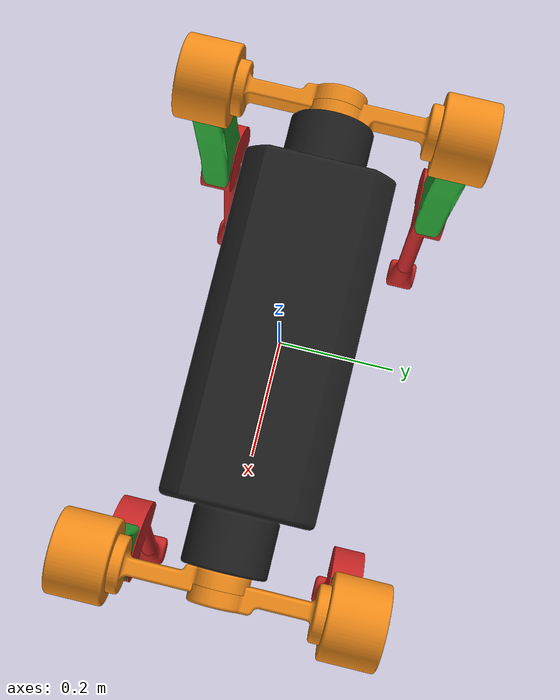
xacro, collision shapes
<?xml version="1.0"?>
<robot xmlns:xacro="http://www.ros.org/wiki/xacro" name="argos">

    <xacro:property name="pi" value="3.14159265358979" />
    <xacro:include filename="$(find mini_project)/robots/robot_properties.urdf.xacro"/>

    <link name="base_link">
        <visual>
            <geometry>
                <mesh filename="${path_to_base}" scale = "0.001 0.001 0.001"/>
            </geometry>
            <origin xyz="0.0 0.0 0.0" rpy="${pi/2} 0 0"/>
        </visual>
        <collision>
            <geometry>
                <mesh filename="${path_to_base}" scale = "0.001 0.001 0.001"/>
            </geometry>
            <origin xyz="0.0 0.0 0.0" rpy="${pi/2} 0 0"/>
        </collision>
    </link>

    <link name="base_inertia">
        <inertial>
            <origin xyz="${body_center_of_mass}"/>
            <mass value="${body_mass}" />
            <inertia ixx="${ixx_body}" ixy="${ixy_body}" ixz="${ixz_body}"
                     iyy="${iyy_body}" iyz="${iyz_body}"
                     izz="${izz_body}" />
        </inertial>
    </link>
    <joint name="base_link_to_base_inertia" type="fixed">
        <parent link="base_link"/>
        <child link="base_inertia"/>
        <origin rpy="0 0 0" xyz="0 0 0"/>
    </joint>

    <xacro:include filename="$(find mini_project)/robots/legs.urdf.xacro"/>

    <xacro:include filename="$(find mini_project)/robots/accessories.urdf.xacro"/>

    <xacro:accessories base_name = "base_link"/>

    <gazebo reference="base_link">
        <material>Gazebo/FlatBlack</material>
    </gazebo>

    <xacro:argos_leg leg="LF"/>
    <xacro:argos_leg leg="RF"/>
    <xacro:argos_leg leg="LH"/>
    <xacro:argos_leg leg="RH"/>

    <xacro:include filename="$(find mini_project)/robots/manipulator.urdf.xacro"/>

    <gazebo>
      <plugin name="p3d_base_controller" filename="libgazebo_ros_p3d.so">
            <alwaysOn>true</alwaysOn>
            <updateRate>50.0</updateRate>
            <bodyName>base_link</bodyName>
            <topicName>odom/ground_truth</topicName>
            <gaussianNoise>0.001</gaussianNoise>
            <frameName>world</frameName>
            <xyzOffsets>0 0 0</xyzOffsets>
            <rpyOffsets>0 0 0</rpyOffsets>
        </plugin>
    </gazebo>

    <gazebo>
      <plugin filename="libgazebo_ros_control.so" name="gazebo_ros_control">
        <legacyModeNS>true</legacyModeNS>
      </plugin>
   </gazebo>

</robot>

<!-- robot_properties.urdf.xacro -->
<robot xmlns:xacro="http://www.ros.org/wiki/xacro">
    <xacro:property name="path_to_base"                     value = "package://mini_project/meshes/body.dae"/>
    <xacro:property name="path_to_leg_roll"                 value = "package://mini_project/meshes/thigh.dae"/>
    <xacro:property name="path_to_upper_leg"                value = "package://mini_project/meshes/upper_leg.dae"/>
    <xacro:property name="path_to_lower_leg"                value = "package://mini_project/meshes/lower_leg.dae"/>
    <xacro:property name="path_to_manipulator_base"         value = "package://mini_project/meshes/manipulator_joint.dae"/>
    <xacro:property name="path_to_manipulator_segment_1"    value = "package://mini_project/meshes/manipulator_segment_1.dae"/>
    <xacro:property name="path_to_manipulator_segment_2"    value = "package://mini_project/meshes/manipulator_segment_2.dae"/>

    <xacro:property name="ixx_body"                         value = "0.23665589"/>
    <xacro:property name="ixy_body"                         value = "0.0"/>
    <xacro:property name="ixz_body"                         value = "0.0"/>
    <xacro:property name="iyy_body"                         value = "0.96482316"/>
    <xacro:property name="iyz_body"                         value = "0.0"/>
    <xacro:property name="izz_body"                         value = "0.94492313"/>
    <xacro:property name="body_mass"                        value = "22.44280461"/>
    <xacro:property name="body_center_of_mass"              value = "0 0 -0.00722624877"/>

    <xacro:property name="ixx_leg_roll"                     value = "0.00885796"/>
    <xacro:property name="ixy_leg_roll"                     value = "-0.00035945"/>
    <xacro:property name="ixz_leg_roll"                     value = "0.0"/>
    <xacro:property name="iyy_leg_roll"                     value = "0.00270149"/>
    <xacro:property name="iyz_leg_roll"                     value = "0.0"/>
    <xacro:property name="izz_leg_roll"                     value = "0.00880666"/>
    <xacro:property name="leg_roll_mass"                    value = "1.16920190"/>
    <xacro:property name="leg_roll_center_x"                value = "0.00160346990"/>
    <xacro:property name="leg_roll_center_y"                value = "0.19560047521"/>
    <xacro:property name="leg_roll_center_z"                value = "0.0"/>

    <xacro:property name="ixx_thigh"                        value = "0.03528932"/>
    <xacro:property name="ixy_thigh"                        value = "0.0"/>
    <xacro:property name="ixz_thigh"                        value = "0.0"/>0
    <xacro:property name="iyy_thigh"                        value = "0.03607343"/>
    <xacro:property name="iyz_thigh"                        value = "0.0"/>
    <xacro:property name="izz_thigh"                        value = "0.00156646"/>
    <xacro:property name="thigh_mass"                       value = "1.45302356"/>
    <xacro:property name="thigh_center_x"                   value = "-0.00000012465"/>
    <xacro:property name="thigh_center_y"                   value = "0.00000008927"/>
    <xacro:property name="thigh_center_z"                   value = "-0.19777343169"/>
    <xacro:property name="thigh_center_of_mass"             value = "${thigh_center_x} ${thigh_center_y} ${thigh_center_z}"/>

    <xacro:property name="ixx_lower_leg"                    value = "0.04402853"/>
    <xacro:property name="ixy_lower_leg"                    value = "0.0"/>
    <xacro:property name="ixz_lower_leg"                    value = "0.00627914"/>
    <xacro:property name="iyy_lower_leg"                    value = "0.04611436"/>
    <xacro:property name="iyz_lower_leg"                    value = "0.0"/>
    <xacro:property name="izz_lower_leg"                    value = "0.00267640"/>
    <xacro:property name="lower_leg_mass"                   value = "0.87000291"/>
    <xacro:property name="lower_leg_center_x"               value = "-0.05466888228"/>
    <xacro:property name="lower_leg_center_y"               value = "0.00000002713"/>
    <xacro:property name="lower_leg_center_z"               value = "-0.15386388146"/>
    <xacro:property name="lower_leg_center_of_mass"         value = "${lower_leg_center_x} ${lower_leg_center_y} ${lower_leg_center_z}"/>

    <xacro:property name="ixx_man_base"                     value = "0.00296184"/>
    <xacro:property name="ixy_man_base"                     value = "-0.00000001"/>
    <xacro:property name="ixz_man_base"                     value = "0.0"/>
    <xacro:property name="iyy_man_base"                     value = "0.00227611"/>
    <xacro:property name="iyz_man_base"                     value = "-0.00023033"/>
    <xacro:property name="izz_man_base"                     value = "0.00315083"/>
    <xacro:property name="man_base_mass"                    value = "0.81645579"/>
    <xacro:property name="man_base_center"                  value = "0.0001195 -0.01132600777 0.04996291284 "/>

    <xacro:property name="ixx_man_seg_1"                    value = "0.00014575"/>
    <xacro:property name="ixy_man_seg_1"                    value = "0.00000006"/>
    <xacro:property name="ixz_man_seg_1"                    value = "0.0"/>
    <xacro:property name="iyy_man_seg_1"                    value = "0.00372678"/>
    <xacro:property name="iyz_man_seg_1"                    value = "0.0"/>
    <xacro:property name="izz_man_seg_1"                    value = "0.00365311"/>
    <xacro:property name="man_seg_1_mass"                   value = "0.32860657"/>
    <xacro:property name="man_seg_1_center"                 value = "-0.12499144985 0.00000184653 0.0"/>

    <xacro:property name="ixx_man_seg_2"                    value = "0.00007802"/>
    <xacro:property name="ixy_man_seg_2"                    value = "0.0"/>
    <xacro:property name="ixz_man_seg_2"                    value = "0.0"/>
    <xacro:property name="iyy_man_seg_2"                    value = "0.00960176"/>
    <xacro:property name="iyz_man_seg_2"                    value = "0.0"/>
    <xacro:property name="izz_man_seg_2"                    value = "0.00962804"/>
    <xacro:property name="man_seg_2_mass"                   value = "0.19651902"/>
    <xacro:property name="man_seg_2_center"                 value = "0.19438946797 0.0 0.00000001267"/>

</robot>

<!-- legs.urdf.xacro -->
<robot xmlns:xacro="http://www.ros.org/wiki/xacro">
    <xacro:macro name="argos_leg" params="leg ">

        <xacro:if value="${leg == 'RF'}">
            <xacro:property name="side" value = "-1"/>
            <xacro:property name="position_hip" value = "0.43"/>
        </xacro:if>

        <xacro:if value="${leg == 'LF'}">
            <xacro:property name="side" value = "1"/>
            <xacro:property name="position_hip" value = "0.43"/>
        </xacro:if>

        <xacro:if value="${leg == 'RH'}">
            <xacro:property name="side" value = "-1"/>
            <xacro:property name="position_hip" value = "-0.43"/>
        </xacro:if>

        <xacro:if value="${leg == 'LH'}">
            <xacro:property name="side" value = "1"/>
            <xacro:property name="position_hip" value = "-0.43"/>
        </xacro:if>

        <xacro:property name="leg_roll_center_of_mass" value = "${side*leg_roll_center_x} ${side*leg_roll_center_y} ${leg_roll_center_z}"/>
        <xacro:property name="toeOffset" value="0.0106"/>
        <xacro:property name="toeStiffness" value="30000.0"/>
        <xacro:property name="toeDamping" value="1000.0"/>
        <xacro:property name="toeFriction" value="1.0"/>
        <xacro:property name="toeLateralFriction" value="1.0"/>

        <link name="${leg}_leg_roll">
            <inertial>
                <origin xyz = "${leg_roll_center_of_mass}"  rpy="0 0 0"/>
                <mass value="${leg_roll_mass}" />
                <inertia ixx="${ixx_leg_roll}" ixy="${ixy_leg_roll}" ixz="${ixz_leg_roll}"
                     iyy="${iyy_leg_roll}" iyz="${iyz_leg_roll}"
                     izz="${izz_leg_roll}" />
            </inertial>
            <visual>
                <geometry>
                    <mesh filename="${path_to_leg_roll}" scale = "0.001 0.001 0.001"/>
                </geometry>
                <origin xyz="0.0 0.0 0.0" rpy="${pi/2} 0.0 ${pi*side/2}" />
            </visual>
            <collision>
                <geometry>
                    <mesh filename="${path_to_leg_roll}" scale = "0.001 0.001 0.001"/>
                </geometry>
                <origin xyz="0.0 0.0 0.0" rpy="${pi/2} 0.0 ${pi*side/2}"/>
            </collision>
        </link>

        <gazebo reference="${leg}_leg_roll">
            <material>Gazebo/Orange</material>
        </gazebo>

        <link name="${leg}_upper_leg">
            <inertial>
                <origin xyz = "${thigh_center_of_mass}"  rpy="0 0 0"/>
                <mass value="${thigh_mass}" />
                <inertia ixx="${ixx_thigh}" ixy="${side*ixy_thigh}" ixz="${ixz_thigh}"
                     iyy="${iyy_thigh}" iyz="${side*iyz_thigh}"
                     izz="${izz_thigh}" />
            </inertial>
            <visual>
                <geometry>
                    <mesh filename="${path_to_upper_leg}" scale = "0.001 0.001 0.001"/>
                </geometry>
                <origin xyz="0.0 0.0 0.0" rpy="${pi/2} ${-pi/2} 0"/>
            </visual>
            <collision>
                <geometry>
                    <mesh filename="${path_to_upper_leg}" scale = "0.001 0.001 0.001"/>
                </geometry>
                <origin xyz="0.0 0.0 0.0" rpy="${pi/2} ${-pi/2} 0"/>
            </collision>
        </link>

        <gazebo reference="${leg}_upper_leg">
            <material>Gazebo/Green</material>
        </gazebo>

        <link name="${leg}_lower_leg">
            <inertial>
                <origin xyz = "${lower_leg_center_of_mass}" rpy="0 -0.2 0"/>
                <mass value="${lower_leg_mass}" />
                <inertia ixx="${ixx_lower_leg}" ixy="${ixy_lower_leg}" ixz="${ixz_lower_leg}"
                     iyy="${iyy_lower_leg}" iyz="${iyz_lower_leg}"
                     izz="${izz_lower_leg}" />
            </inertial>
            <visual>
                <geometry>
                    <mesh filename="${path_to_lower_leg}" scale = "0.001 0.001 0.001"/>
                </geometry>
                <origin xyz="0 0.0 0" rpy="${pi/2} ${pi/2-0.2} 0"/>
            </visual>
            <collision>
                <geometry>
                    <mesh filename="${path_to_lower_leg}" scale = "0.001 0.001 0.001"/>
                </geometry>
                <origin xyz="0 0.0 0" rpy="${pi/2} ${pi/2-0.2} 0"/>
            </collision>
        </link>

        <gazebo reference="${leg}_lower_leg">
			<kp>100000.0</kp>
            <kd>1.0</kd>
            <mu1>1.0</mu1>
            <mu2>1.0</mu2>
            <maxVel>0.0</maxVel>
            <minDepth>0.001</minDepth>
            <material>Gazebo/Red</material>
        </gazebo>

        <link name="${leg}_foot"/>

        <joint name="${leg}_hip_joint" type="revolute">
            <parent link="base_link"/>
            <child link="${leg}_leg_roll"/>
            <axis xyz="1.0 0.0 0.0"/>
            <origin xyz="${position_hip} 0.0 0.0"/>
            <limit effort="100" lower="-${pi}" upper="${pi}" velocity="10.0" />
        </joint>

        <joint name="${leg}_upper_leg_joint" type="revolute">
            <parent link="${leg}_leg_roll"/>
            <child link="${leg}_upper_leg"/>
            <axis xyz="0.0 1.0  0.0"/>
            <origin xyz="0.0 ${side*0.233} 0.0"/>

            <limit effort="100" lower="-${pi}" upper="${pi}" velocity="10.0" />
        </joint>

        <joint name="${leg}_lower_leg_joint" type="revolute">
            <parent link="${leg}_upper_leg"/>
            <child link="${leg}_lower_leg"/>
            <axis xyz="0.0 1.0  0.0"/>
            <origin xyz="0.0 0.0 -0.45"/>
            <limit effort="100" lower="-${pi}" upper="${pi}" velocity="10.0" />
        </joint>

        <joint name="${leg}_foot_joint" type="fixed">
            <parent link="${leg}_lower_leg"/>
            <child link="${leg}_foot"/>
            <origin xyz="0.0 0.0 -0.61"/>
        </joint>

        <gazebo reference="${leg}_hip_joint">
            <provideFeedback>true</provideFeedback>
        </gazebo>

        <gazebo reference="${leg}_upper_leg_joint">
            <provideFeedback>true</provideFeedback>
        </gazebo>

        <gazebo reference="${leg}_lower_leg_joint">
            <provideFeedback>true</provideFeedback>
        </gazebo>

        <transmission name="${leg}_hip_joint_trans">
            <type>transmission_interface/SimpleTransmission</type>
            <joint name="${leg}_hip_joint">
            <hardwareInterface>hardware_interface/EffortJointInterface</hardwareInterface>
            </joint>
            <actuator name="${leg}_hip_joint_motor">
                <mechanicalReduction>1</mechanicalReduction>
            </actuator>
        </transmission>

        <transmission name="${leg}_upper_leg_joint_trans">
            <type>transmission_interface/SimpleTransmission</type>
            <joint name="${leg}_upper_leg_joint">
            <hardwareInterface>hardware_interface/EffortJointInterface</hardwareInterface>
            </joint>
            <actuator name="${leg}_upper_leg_joint_motor">
                <mechanicalReduction>1</mechanicalReduction>
            </actuator>
        </transmission>

        <transmission name="${leg}_lower_leg_joint_trans">
            <type>transmission_interface/SimpleTransmission</type>
            <joint name="${leg}_lower_leg_joint">
            <hardwareInterface>hardware_interface/EffortJointInterface</hardwareInterface>
            </joint>
            <actuator name="${leg}_lower_joint_motor">
                <mechanicalReduction>1</mechanicalReduction>
            </actuator>
        </transmission>

    </xacro:macro>
</robot>

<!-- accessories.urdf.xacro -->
<robot xmlns:xacro="http://ros.org/wiki/xacro">
    <xacro:macro name="accessories" params="base_name " >

        <xacro:include filename="$(find mini_project)/robots/materials.urdf.xacro" />

    <!-- Arguments -->

    <xacro:arg name="camera_name"   default="zed2" />
    <xacro:arg name="camera_model"  default="zed2" />
    <xacro:arg name="base_frame"    default="${base_name}" />
    <xacro:arg name="cam_pos_x"     default="0.31" />
    <xacro:arg name="cam_pos_y"     default="0.0" />
    <xacro:arg name="cam_pos_z"     default="-0.12" />
    <xacro:arg name="cam_roll"      default="0.0" />
    <xacro:arg name="cam_pitch"     default="0.0" />
    <xacro:arg name="cam_yaw"       default="0.0" />

    <!-- Properties -->
    <xacro:property name="M_PI"     value="3.1415926535897931" />
    <xacro:property name="model"    value="$(arg camera_model)" />

    <xacro:if value="${model == 'zed'}">
        <xacro:property name="baseline" value="0.12" />
    </xacro:if>
    <xacro:if value="${model == 'zedm'}">
        <xacro:property name="baseline" value="0.06" />
    </xacro:if>
    <xacro:if value="${model == 'zed2'}">
        <xacro:property name="baseline" value="0.12" />
    </xacro:if>
    <xacro:if value="${model == 'zed2i'}">
        <xacro:property name="baseline" value="0.12" />
    </xacro:if>

<!-- Camera Center -->
    <joint name="camera_center_joint" type="fixed">
        <parent link="$(arg base_frame)"/>
        <child link="camera_center"/>
        <origin xyz="$(arg cam_pos_x) $(arg cam_pos_y) $(arg cam_pos_z)" rpy="$(arg cam_roll) $(arg cam_pitch) $(arg cam_yaw)" />
    </joint>

    <link name="camera_center">
        <visual>
            <origin xyz="0 0 0" rpy="0 0 0"/>
            <geometry>
                <mesh filename="package://mini_project/meshes/${model}.stl" />
            </geometry>
            <material name="${model}_mat" />
        </visual>
    </link>

<!-- Left Camera -->
    <joint name="left_camera_joint" type="fixed">
        <parent link="camera_center"/>
        <child link="left_camera_frame"/>
        <origin xyz="0 ${baseline/2} 0" rpy="0 0 0" />
    </joint>

    <link name="left_camera_frame" />

    <joint name="left_camera_optical_joint" type="fixed">
        <origin xyz="0 0 0" rpy="-${M_PI/2} 0.0 -${M_PI/2}"/>
        <parent link="left_camera_frame"/>
        <child link="left_camera_optical_frame"/>
    </joint>

    <link name="left_camera_optical_frame"/>

        <gazebo reference="camera_center">
            <sensor type="multicamera" name="stereo_camera">
            <update_rate>50.0</update_rate>
            <camera name="left">
                <pose>0 0.06 0 0 0 0</pose>
                <horizontal_fov>1.91986218</horizontal_fov>
                <vertical_fov>1.22173048</vertical_fov>
                <diagonal_fov>2.0943951</diagonal_fov>
                <image>
                <width>1280</width>
                <height>720</height>
                <format>R8G8B8</format>
                </image>
                <clip>
                <near>0.02</near>
                <far>300</far>
                </clip>
                <noise>
                <type>gaussian</type>
                <mean>0.0</mean>
                <stddev>0.004</stddev>
                </noise>
            </camera>
            <camera name="right">
                <pose>0 -0.06 0 0 0 0</pose>
                <horizontal_fov>1.91986218</horizontal_fov>
                <vertical_fov>1.22173048</vertical_fov>
                <diagonal_fov>2.0943951</diagonal_fov>
                <image>
                <width>1280</width>
                <height>720</height>
                <format>R8G8B8</format>
                </image>
                <clip>
                <near>0.02</near>
                <far>300</far>
                </clip>
                <noise>
                <type>gaussian</type>
                <mean>0.0</mean>
                <stddev>0.004</stddev>
                </noise>
            </camera>
            <plugin name="stereo_camera_controller" filename="libgazebo_ros_multicamera.so">
                <alwaysOn>true</alwaysOn>
                <updateRate>0.0</updateRate>
                <cameraName>camera</cameraName>
                <imageTopicName>image_raw</imageTopicName>
                <cameraInfoTopicName>camera_info</cameraInfoTopicName>
                <frameName>left_camera_optical_frame</frameName>
                <hackBaseline>0.07</hackBaseline>
                <distortionK1>0.0</distortionK1>
                <distortionK2>0.0</distortionK2>
                <distortionK3>0.0</distortionK3>
                <distortionT1>0.0</distortionT1>
                <distortionT2>0.0</distortionT2>
            </plugin>
            </sensor>
        </gazebo>

        <gazebo>
            <plugin name="imu_controller" filename="libhector_gazebo_ros_imu.so">
                <updateRate>50.0</updateRate>
                <bodyName>imu_link</bodyName>
                <topicName>imu/data</topicName>
                <accelDrift>0.005 0.005 0.005</accelDrift>
                <frameId>argos/base_link</frameId>
                <accelGaussianNoise>0.005 0.005 0.005</accelGaussianNoise>
                <rateDrift>0.005 0.005 0.005 </rateDrift>
                <rateGaussianNoise>0.005 0.005 0.005 </rateGaussianNoise>
                <headingDrift>0.005</headingDrift>
                <headingGaussianNoise>0.005</headingGaussianNoise>
            </plugin>
        </gazebo>

        <link name="imu_link">
            <inertial>
                <mass value="0.001"/>
                <origin xyz="0 0 0" rpy="0 0 0"/>
                <inertia ixx="1e-09" ixy="0.0" ixz="0.0" iyy="1e-09" iyz="0.0" izz="1e-09"/>
            </inertial>
        </link>
        <joint name="imu_joint" type="fixed">
            <parent link="${base_name}" />
            <child link="imu_link" />
        </joint>

    </xacro:macro>
</robot>
